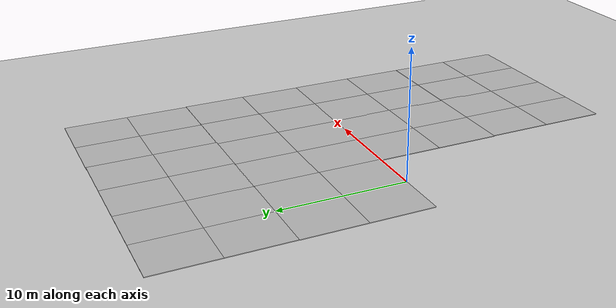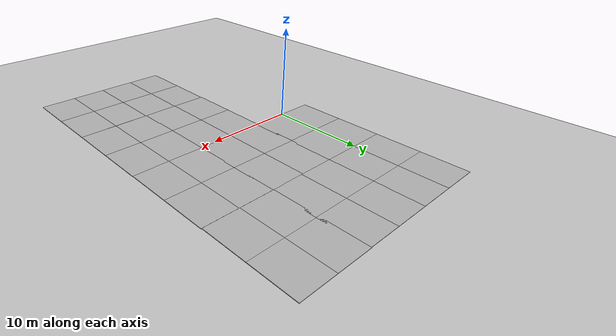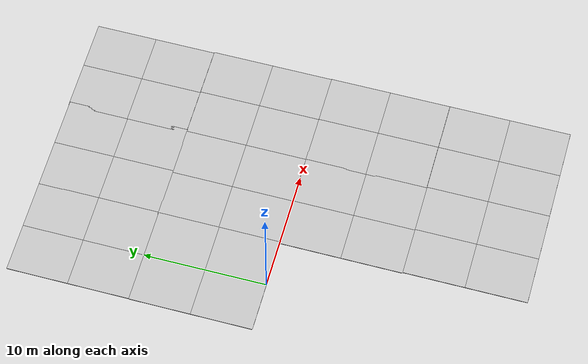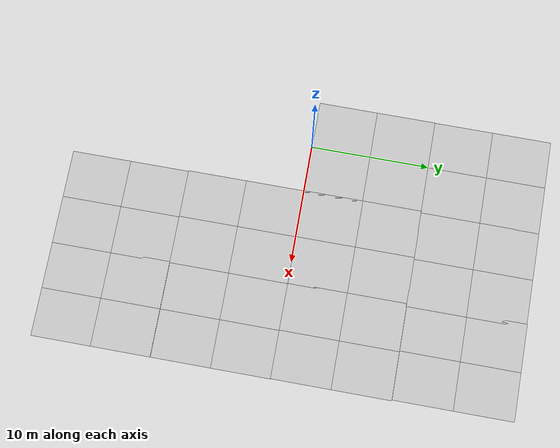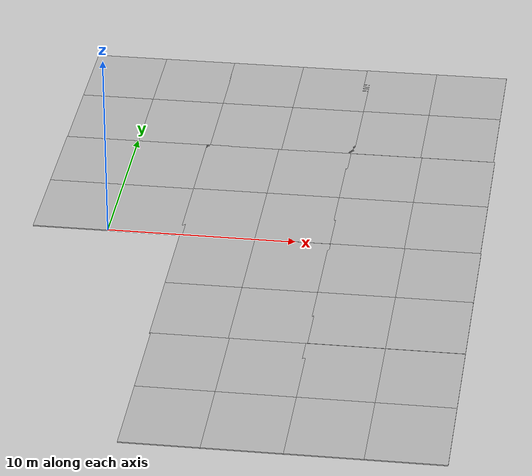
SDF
<sdf version="1.6">
 <world name="default">
  <model name="ground_plane">
   <static>1</static>
   <link name="link">
    <collision name="collision">
     <geometry><plane><normal>0 0 1</normal><size>100 100</size></plane></geometry>
     <surface><friction><ode><mu>100</mu><mu2>50</mu2></ode></friction></surface>
    </collision>
    <visual name="visual">
     <cast_shadows>0</cast_shadows>
     <geometry><plane><normal>0 0 1</normal><size>100 100</size></plane></geometry>
     <material>
      <script><uri>file://media/materials/scripts/gazebo.material</uri><name>Gazebo/Grey</name></script>
     </material>
    </visual>
    <velocity_decay><linear>0</linear><angular>0</angular></velocity_decay>
   </link>
  </model>
  <model name="mud_box">
   <static>1</static>
   <link name="link">
    <collision name="collision"><geometry><box><size>8 10 0.2</size></box></geometry></collision>
    <visual name="visual_1">
     <pose>-2 2.5 0 0 -0 0</pose>
     <cast_shadows>0</cast_shadows>
     <geometry><box><size>4 5 0.2</size></box></geometry>
     <material>
      <script>
       <uri>model://mud_box/materials/scripts</uri>
       <uri>model://mud_box/materials/textures</uri>
       <name>vrc/mud</name>
      </script>
     </material>
    </visual>
    <visual name="visual_2">
     <pose>2 2.5 0 0 -0 0</pose>
     <cast_shadows>0</cast_shadows>
     <geometry><box><size>4 5 0.2</size></box></geometry>
     <material>
      <script>
       <uri>model://mud_box/materials/scripts</uri>
       <uri>model://mud_box/materials/textures</uri>
       <name>vrc/mud</name>
      </script>
     </material>
    </visual>
    <visual name="visual_3">
     <pose>2 -2.5 0 0 -0 0</pose>
     <cast_shadows>0</cast_shadows>
     <geometry><box><size>4 5 0.2</size></box></geometry>
     <material>
      <script>
       <uri>model://mud_box/materials/scripts</uri>
       <uri>model://mud_box/materials/textures</uri>
       <name>vrc/mud</name>
      </script>
     </material>
    </visual>
    <visual name="visual_4">
     <pose>-2 -2.5 0 0 -0 0</pose>
     <cast_shadows>0</cast_shadows>
     <geometry><box><size>4 5 0.2</size></box></geometry>
     <material>
      <script>
       <uri>model://mud_box/materials/scripts</uri>
       <uri>model://mud_box/materials/textures</uri>
       <name>vrc/mud</name>
      </script>
     </material>
    </visual>
   </link>
   <pose>-0.009651 4.99414 -0.09369 0 -0 0</pose>
  </model>
  <model name="mud_box_clone_0">
   <static>1</static>
   <link name="link">
    <collision name="collision"><geometry><box><size>8 10 0.2</size></box></geometry></collision>
    <visual name="visual_1">
     <pose>-2 2.5 0 0 -0 0</pose>
     <cast_shadows>0</cast_shadows>
     <geometry><box><size>4 5 0.2</size></box></geometry>
     <material>
      <script>
       <uri>model://mud_box/materials/scripts</uri>
       <uri>model://mud_box/materials/textures</uri>
       <name>vrc/mud</name>
      </script>
     </material>
    </visual>
    <visual name="visual_2">
     <pose>2 2.5 0 0 -0 0</pose>
     <cast_shadows>0</cast_shadows>
     <geometry><box><size>4 5 0.2</size></box></geometry>
     <material>
      <script>
       <uri>model://mud_box/materials/scripts</uri>
       <uri>model://mud_box/materials/textures</uri>
       <name>vrc/mud</name>
      </script>
     </material>
    </visual>
    <visual name="visual_3">
     <pose>2 -2.5 0 0 -0 0</pose>
     <cast_shadows>0</cast_shadows>
     <geometry><box><size>4 5 0.2</size></box></geometry>
     <material>
      <script>
       <uri>model://mud_box/materials/scripts</uri>
       <uri>model://mud_box/materials/textures</uri>
       <name>vrc/mud</name>
      </script>
     </material>
    </visual>
    <visual name="visual_4">
     <pose>-2 -2.5 0 0 -0 0</pose>
     <cast_shadows>0</cast_shadows>
     <geometry><box><size>4 5 0.2</size></box></geometry>
     <material>
      <script>
       <uri>model://mud_box/materials/scripts</uri>
       <uri>model://mud_box/materials/textures</uri>
       <name>vrc/mud</name>
      </script>
     </material>
    </visual>
   </link>
   <pose>7.82682 5.03351 -0.09369 0 -0 0</pose>
  </model>
  <model name="mud_box_clone_3">
   <static>1</static>
   <link name="link">
    <collision name="collision"><geometry><box><size>8 10 0.2</size></box></geometry></collision>
    <visual name="visual_1">
     <pose>-2 2.5 0 0 -0 0</pose>
     <cast_shadows>0</cast_shadows>
     <geometry><box><size>4 5 0.2</size></box></geometry>
     <material>
      <script>
       <uri>model://mud_box/materials/scripts</uri>
       <uri>model://mud_box/materials/textures</uri>
       <name>vrc/mud</name>
      </script>
     </material>
    </visual>
    <visual name="visual_2">
     <pose>2 2.5 0 0 -0 0</pose>
     <cast_shadows>0</cast_shadows>
     <geometry><box><size>4 5 0.2</size></box></geometry>
     <material>
      <script>
       <uri>model://mud_box/materials/scripts</uri>
       <uri>model://mud_box/materials/textures</uri>
       <name>vrc/mud</name>
      </script>
     </material>
    </visual>
    <visual name="visual_3">
     <pose>2 -2.5 0 0 -0 0</pose>
     <cast_shadows>0</cast_shadows>
     <geometry><box><size>4 5 0.2</size></box></geometry>
     <material>
      <script>
       <uri>model://mud_box/materials/scripts</uri>
       <uri>model://mud_box/materials/textures</uri>
       <name>vrc/mud</name>
      </script>
     </material>
    </visual>
    <visual name="visual_4">
     <pose>-2 -2.5 0 0 -0 0</pose>
     <cast_shadows>0</cast_shadows>
     <geometry><box><size>4 5 0.2</size></box></geometry>
     <material>
      <script>
       <uri>model://mud_box/materials/scripts</uri>
       <uri>model://mud_box/materials/textures</uri>
       <name>vrc/mud</name>
      </script>
     </material>
    </visual>
   </link>
   <pose>7.85073 -4.97133 -0.09369 0 -0 0</pose>
  </model>
  <model name="mud_box_clone_1_clone_1">
   <static>1</static>
   <link name="link">
    <collision name="collision"><geometry><box><size>8 10 0.2</size></box></geometry></collision>
    <visual name="visual_1">
     <pose>-2 2.5 0 0 -0 0</pose>
     <cast_shadows>0</cast_shadows>
     <geometry><box><size>4 5 0.2</size></box></geometry>
     <material>
      <script>
       <uri>model://mud_box/materials/scripts</uri>
       <uri>model://mud_box/materials/textures</uri>
       <name>vrc/mud</name>
      </script>
     </material>
    </visual>
    <visual name="visual_2">
     <pose>2 2.5 0 0 -0 0</pose>
     <cast_shadows>0</cast_shadows>
     <geometry><box><size>4 5 0.2</size></box></geometry>
     <material>
      <script>
       <uri>model://mud_box/materials/scripts</uri>
       <uri>model://mud_box/materials/textures</uri>
       <name>vrc/mud</name>
      </script>
     </material>
    </visual>
    <visual name="visual_3">
     <pose>2 -2.5 0 0 -0 0</pose>
     <cast_shadows>0</cast_shadows>
     <geometry><box><size>4 5 0.2</size></box></geometry>
     <material>
      <script>
       <uri>model://mud_box/materials/scripts</uri>
       <uri>model://mud_box/materials/textures</uri>
       <name>vrc/mud</name>
      </script>
     </material>
    </visual>
    <visual name="visual_4">
     <pose>-2 -2.5 0 0 -0 0</pose>
     <cast_shadows>0</cast_shadows>
     <geometry><box><size>4 5 0.2</size></box></geometry>
     <material>
      <script>
       <uri>model://mud_box/materials/scripts</uri>
       <uri>model://mud_box/materials/textures</uri>
       <name>vrc/mud</name>
      </script>
     </material>
    </visual>
   </link>
   <pose>7.91254 -14.9674 -0.09369 0 -0 0</pose>
  </model>
  <model name="mud_box_clone_0_clone">
   <static>1</static>
   <link name="link">
    <collision name="collision"><geometry><box><size>8 10 0.2</size></box></geometry></collision>
    <visual name="visual_1">
     <pose>-2 2.5 0 0 -0 0</pose>
     <cast_shadows>0</cast_shadows>
     <geometry><box><size>4 5 0.2</size></box></geometry>
     <material>
      <script>
       <uri>model://mud_box/materials/scripts</uri>
       <uri>model://mud_box/materials/textures</uri>
       <name>vrc/mud</name>
      </script>
     </material>
    </visual>
    <visual name="visual_2">
     <pose>2 2.5 0 0 -0 0</pose>
     <cast_shadows>0</cast_shadows>
     <geometry><box><size>4 5 0.2</size></box></geometry>
     <material>
      <script>
       <uri>model://mud_box/materials/scripts</uri>
       <uri>model://mud_box/materials/textures</uri>
       <name>vrc/mud</name>
      </script>
     </material>
    </visual>
    <visual name="visual_3">
     <pose>2 -2.5 0 0 -0 0</pose>
     <cast_shadows>0</cast_shadows>
     <geometry><box><size>4 5 0.2</size></box></geometry>
     <material>
      <script>
       <uri>model://mud_box/materials/scripts</uri>
       <uri>model://mud_box/materials/textures</uri>
       <name>vrc/mud</name>
      </script>
     </material>
    </visual>
    <visual name="visual_4">
     <pose>-2 -2.5 0 0 -0 0</pose>
     <cast_shadows>0</cast_shadows>
     <geometry><box><size>4 5 0.2</size></box></geometry>
     <material>
      <script>
       <uri>model://mud_box/materials/scripts</uri>
       <uri>model://mud_box/materials/textures</uri>
       <name>vrc/mud</name>
      </script>
     </material>
    </visual>
   </link>
   <pose>15.7348 5.02293 -0.09369 0 -0 0</pose>
  </model>
  <model name="mud_box_clone_0_clone_0">
   <static>1</static>
   <link name="link">
    <collision name="collision"><geometry><box><size>8 10 0.2</size></box></geometry></collision>
    <visual name="visual_1">
     <pose>-2 2.5 0 0 -0 0</pose>
     <cast_shadows>0</cast_shadows>
     <geometry><box><size>4 5 0.2</size></box></geometry>
     <material>
      <script>
       <uri>model://mud_box/materials/scripts</uri>
       <uri>model://mud_box/materials/textures</uri>
       <name>vrc/mud</name>
      </script>
     </material>
    </visual>
    <visual name="visual_2">
     <pose>2 2.5 0 0 -0 0</pose>
     <cast_shadows>0</cast_shadows>
     <geometry><box><size>4 5 0.2</size></box></geometry>
     <material>
      <script>
       <uri>model://mud_box/materials/scripts</uri>
       <uri>model://mud_box/materials/textures</uri>
       <name>vrc/mud</name>
      </script>
     </material>
    </visual>
    <visual name="visual_3">
     <pose>2 -2.5 0 0 -0 0</pose>
     <cast_shadows>0</cast_shadows>
     <geometry><box><size>4 5 0.2</size></box></geometry>
     <material>
      <script>
       <uri>model://mud_box/materials/scripts</uri>
       <uri>model://mud_box/materials/textures</uri>
       <name>vrc/mud</name>
      </script>
     </material>
    </visual>
    <visual name="visual_4">
     <pose>-2 -2.5 0 0 -0 0</pose>
     <cast_shadows>0</cast_shadows>
     <geometry><box><size>4 5 0.2</size></box></geometry>
     <material>
      <script>
       <uri>model://mud_box/materials/scripts</uri>
       <uri>model://mud_box/materials/textures</uri>
       <name>vrc/mud</name>
      </script>
     </material>
    </visual>
   </link>
   <pose>15.7638 -4.9457 -0.09369 0 -0 0</pose>
  </model>
  <model name="mud_box_clone_0_clone_1">
   <static>1</static>
   <link name="link">
    <collision name="collision"><geometry><box><size>8 10 0.2</size></box></geometry></collision>
    <visual name="visual_1">
     <pose>-2 2.5 0 0 -0 0</pose>
     <cast_shadows>0</cast_shadows>
     <geometry><box><size>4 5 0.2</size></box></geometry>
     <material>
      <script>
       <uri>model://mud_box/materials/scripts</uri>
       <uri>model://mud_box/materials/textures</uri>
       <name>vrc/mud</name>
      </script>
     </material>
    </visual>
    <visual name="visual_2">
     <pose>2 2.5 0 0 -0 0</pose>
     <cast_shadows>0</cast_shadows>
     <geometry><box><size>4 5 0.2</size></box></geometry>
     <material>
      <script>
       <uri>model://mud_box/materials/scripts</uri>
       <uri>model://mud_box/materials/textures</uri>
       <name>vrc/mud</name>
      </script>
     </material>
    </visual>
    <visual name="visual_3">
     <pose>2 -2.5 0 0 -0 0</pose>
     <cast_shadows>0</cast_shadows>
     <geometry><box><size>4 5 0.2</size></box></geometry>
     <material>
      <script>
       <uri>model://mud_box/materials/scripts</uri>
       <uri>model://mud_box/materials/textures</uri>
       <name>vrc/mud</name>
      </script>
     </material>
    </visual>
    <visual name="visual_4">
     <pose>-2 -2.5 0 0 -0 0</pose>
     <cast_shadows>0</cast_shadows>
     <geometry><box><size>4 5 0.2</size></box></geometry>
     <material>
      <script>
       <uri>model://mud_box/materials/scripts</uri>
       <uri>model://mud_box/materials/textures</uri>
       <name>vrc/mud</name>
      </script>
     </material>
    </visual>
   </link>
   <pose>15.7661 -14.962 -0.09369 0 -0 0</pose>
  </model>
  <model name="mud_box_clone_4">
   <static>1</static>
   <link name="link">
    <collision name="collision"><geometry><box><size>8 10 0.2</size></box></geometry></collision>
    <visual name="visual_1">
     <pose>-2 2.5 0 0 -0 0</pose>
     <cast_shadows>0</cast_shadows>
     <geometry><box><size>4 5 0.2</size></box></geometry>
     <material>
      <script>
       <uri>model://mud_box/materials/scripts</uri>
       <uri>model://mud_box/materials/textures</uri>
       <name>vrc/mud</name>
      </script>
     </material>
    </visual>
    <visual name="visual_2">
     <pose>2 2.5 0 0 -0 0</pose>
     <cast_shadows>0</cast_shadows>
     <geometry><box><size>4 5 0.2</size></box></geometry>
     <material>
      <script>
       <uri>model://mud_box/materials/scripts</uri>
       <uri>model://mud_box/materials/textures</uri>
       <name>vrc/mud</name>
      </script>
     </material>
    </visual>
    <visual name="visual_3">
     <pose>2 -2.5 0 0 -0 0</pose>
     <cast_shadows>0</cast_shadows>
     <geometry><box><size>4 5 0.2</size></box></geometry>
     <material>
      <script>
       <uri>model://mud_box/materials/scripts</uri>
       <uri>model://mud_box/materials/textures</uri>
       <name>vrc/mud</name>
      </script>
     </material>
    </visual>
    <visual name="visual_4">
     <pose>-2 -2.5 0 0 -0 0</pose>
     <cast_shadows>0</cast_shadows>
     <geometry><box><size>4 5 0.2</size></box></geometry>
     <material>
      <script>
       <uri>model://mud_box/materials/scripts</uri>
       <uri>model://mud_box/materials/textures</uri>
       <name>vrc/mud</name>
      </script>
     </material>
    </visual>
   </link>
   <pose>0.01205 14.9941 -0.09369 0 -0 0</pose>
  </model>
  <model name="mud_box_clone_7">
   <static>1</static>
   <link name="link">
    <collision name="collision"><geometry><box><size>8 10 0.2</size></box></geometry></collision>
    <visual name="visual_1">
     <pose>-2 2.5 0 0 -0 0</pose>
     <cast_shadows>0</cast_shadows>
     <geometry><box><size>4 5 0.2</size></box></geometry>
     <material>
      <script>
       <uri>model://mud_box/materials/scripts</uri>
       <uri>model://mud_box/materials/textures</uri>
       <name>vrc/mud</name>
      </script>
     </material>
    </visual>
    <visual name="visual_2">
     <pose>2 2.5 0 0 -0 0</pose>
     <cast_shadows>0</cast_shadows>
     <geometry><box><size>4 5 0.2</size></box></geometry>
     <material>
      <script>
       <uri>model://mud_box/materials/scripts</uri>
       <uri>model://mud_box/materials/textures</uri>
       <name>vrc/mud</name>
      </script>
     </material>
    </visual>
    <visual name="visual_3">
     <pose>2 -2.5 0 0 -0 0</pose>
     <cast_shadows>0</cast_shadows>
     <geometry><box><size>4 5 0.2</size></box></geometry>
     <material>
      <script>
       <uri>model://mud_box/materials/scripts</uri>
       <uri>model://mud_box/materials/textures</uri>
       <name>vrc/mud</name>
      </script>
     </material>
    </visual>
    <visual name="visual_4">
     <pose>-2 -2.5 0 0 -0 0</pose>
     <cast_shadows>0</cast_shadows>
     <geometry><box><size>4 5 0.2</size></box></geometry>
     <material>
      <script>
       <uri>model://mud_box/materials/scripts</uri>
       <uri>model://mud_box/materials/textures</uri>
       <name>vrc/mud</name>
      </script>
     </material>
    </visual>
   </link>
   <pose>7.97523 14.997 -0.09369 0 -0 0</pose>
  </model>
  <model name="mud_box_clone_8">
   <static>1</static>
   <link name="link">
    <collision name="collision"><geometry><box><size>8 10 0.2</size></box></geometry></collision>
    <visual name="visual_1">
     <pose>-2 2.5 0 0 -0 0</pose>
     <cast_shadows>0</cast_shadows>
     <geometry><box><size>4 5 0.2</size></box></geometry>
     <material>
      <script>
       <uri>model://mud_box/materials/scripts</uri>
       <uri>model://mud_box/materials/textures</uri>
       <name>vrc/mud</name>
      </script>
     </material>
    </visual>
    <visual name="visual_2">
     <pose>2 2.5 0 0 -0 0</pose>
     <cast_shadows>0</cast_shadows>
     <geometry><box><size>4 5 0.2</size></box></geometry>
     <material>
      <script>
       <uri>model://mud_box/materials/scripts</uri>
       <uri>model://mud_box/materials/textures</uri>
       <name>vrc/mud</name>
      </script>
     </material>
    </visual>
    <visual name="visual_3">
     <pose>2 -2.5 0 0 -0 0</pose>
     <cast_shadows>0</cast_shadows>
     <geometry><box><size>4 5 0.2</size></box></geometry>
     <material>
      <script>
       <uri>model://mud_box/materials/scripts</uri>
       <uri>model://mud_box/materials/textures</uri>
       <name>vrc/mud</name>
      </script>
     </material>
    </visual>
    <visual name="visual_4">
     <pose>-2 -2.5 0 0 -0 0</pose>
     <cast_shadows>0</cast_shadows>
     <geometry><box><size>4 5 0.2</size></box></geometry>
     <material>
      <script>
       <uri>model://mud_box/materials/scripts</uri>
       <uri>model://mud_box/materials/textures</uri>
       <name>vrc/mud</name>
      </script>
     </material>
    </visual>
   </link>
   <pose>15.6635 15.0297 -0.09369 0 -0 0</pose>
  </model>
 </world>
</sdf>
